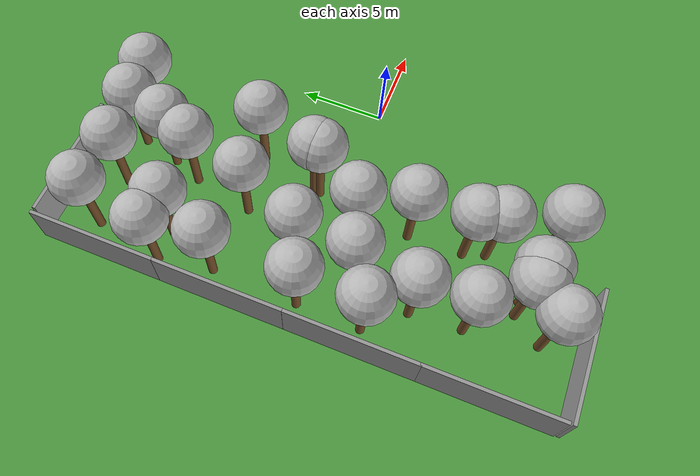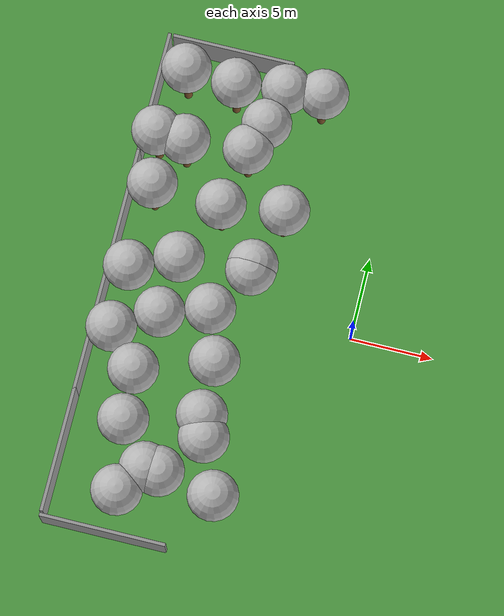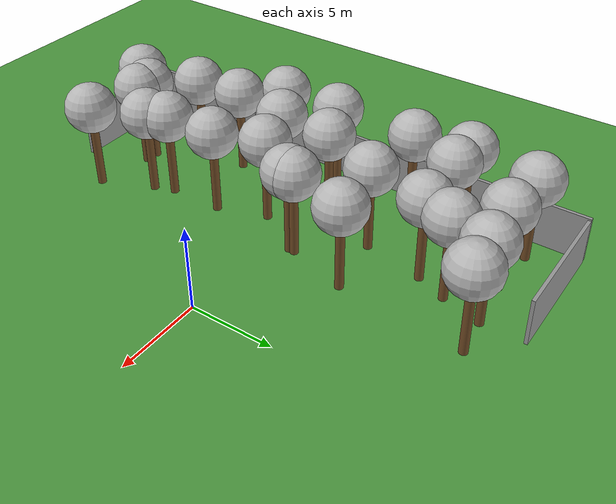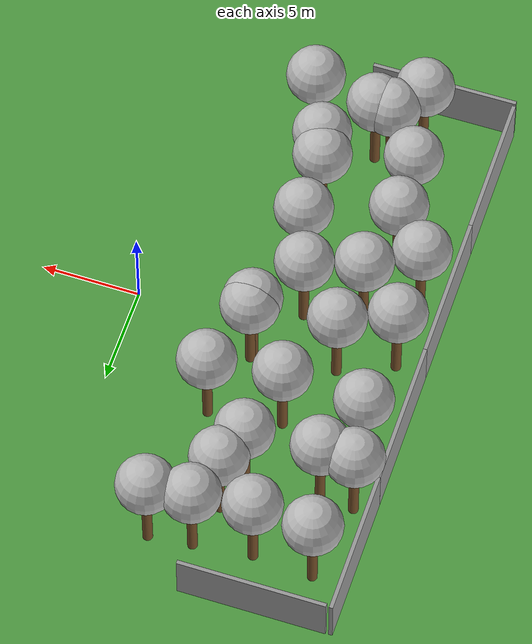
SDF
<sdf version="1.7">
 <world name="default">
  <model name="tree_simple488">
   <static>1</static>
   <link name="link">
    <pose>0 0 0.1 0 -0 0</pose>
    <collision name="collision_trunk">
     <pose>0 0 2 0 -0 0</pose>
     <geometry><cylinder><radius>0.25</radius><length>4</length></cylinder></geometry>
    </collision>
    <collision name="collision_treetop">
     <pose>0 0 5.2 0 -0 0</pose>
     <geometry><sphere><radius>1.5</radius></sphere></geometry>
    </collision>
    <visual name="trunk">
     <pose>0 0 2 0 -0 0</pose>
     <geometry><cylinder><radius>0.25</radius><length>4</length></cylinder></geometry>
     <material>
      <script>
       <uri>model://tree_simple/scripts</uri>
       <uri>model://tree_simple/materials/textures</uri>
       <name>TreeSimple/Trunk</name>
      </script>
     </material>
    </visual>
    <visual name="treetop">
     <pose>0 0 5.2 0 -0 0</pose>
     <geometry><sphere><radius>1.5</radius></sphere></geometry>
     <material>
      <script>
       <uri>model://tree_simple/scripts</uri>
       <uri>model://tree_simple/materials/textures</uri>
       <name>TreeSimple/Treetop</name>
      </script>
     </material>
    </visual>
   </link>
   <pose>-13.1216 12.436 0 0 -0 0</pose>
  </model>
  <model name="tree_simple453">
   <static>1</static>
   <link name="link">
    <pose>0 0 0.1 0 -0 0</pose>
    <collision name="collision_trunk">
     <pose>0 0 2 0 -0 0</pose>
     <geometry><cylinder><radius>0.25</radius><length>4</length></cylinder></geometry>
    </collision>
    <collision name="collision_treetop">
     <pose>0 0 5.2 0 -0 0</pose>
     <geometry><sphere><radius>1.5</radius></sphere></geometry>
    </collision>
    <visual name="trunk">
     <pose>0 0 2 0 -0 0</pose>
     <geometry><cylinder><radius>0.25</radius><length>4</length></cylinder></geometry>
     <material>
      <script>
       <uri>model://tree_simple/scripts</uri>
       <uri>model://tree_simple/materials/textures</uri>
       <name>TreeSimple/Trunk</name>
      </script>
     </material>
    </visual>
    <visual name="treetop">
     <pose>0 0 5.2 0 -0 0</pose>
     <geometry><sphere><radius>1.5</radius></sphere></geometry>
     <material>
      <script>
       <uri>model://tree_simple/scripts</uri>
       <uri>model://tree_simple/materials/textures</uri>
       <name>TreeSimple/Treetop</name>
      </script>
     </material>
    </visual>
   </link>
   <pose>-12.1353 8.19022 0 0 -0 0</pose>
  </model>
  <model name="tree_simple415">
   <static>1</static>
   <link name="link">
    <pose>0 0 0.1 0 -0 0</pose>
    <collision name="collision_trunk">
     <pose>0 0 2 0 -0 0</pose>
     <geometry><cylinder><radius>0.25</radius><length>4</length></cylinder></geometry>
    </collision>
    <collision name="collision_treetop">
     <pose>0 0 5.2 0 -0 0</pose>
     <geometry><sphere><radius>1.5</radius></sphere></geometry>
    </collision>
    <visual name="trunk">
     <pose>0 0 2 0 -0 0</pose>
     <geometry><cylinder><radius>0.25</radius><length>4</length></cylinder></geometry>
     <material>
      <script>
       <uri>model://tree_simple/scripts</uri>
       <uri>model://tree_simple/materials/textures</uri>
       <name>TreeSimple/Trunk</name>
      </script>
     </material>
    </visual>
    <visual name="treetop">
     <pose>0 0 5.2 0 -0 0</pose>
     <geometry><sphere><radius>1.5</radius></sphere></geometry>
     <material>
      <script>
       <uri>model://tree_simple/scripts</uri>
       <uri>model://tree_simple/materials/textures</uri>
       <name>TreeSimple/Treetop</name>
      </script>
     </material>
    </visual>
   </link>
   <pose>-11.6356 -5.82525 0 0 -0 0</pose>
  </model>
  <model name="tree_simple360">
   <static>1</static>
   <link name="link">
    <pose>0 0 0.1 0 -0 0</pose>
    <collision name="collision_trunk">
     <pose>0 0 2 0 -0 0</pose>
     <geometry><cylinder><radius>0.25</radius><length>4</length></cylinder></geometry>
    </collision>
    <collision name="collision_treetop">
     <pose>0 0 5.2 0 -0 0</pose>
     <geometry><sphere><radius>1.5</radius></sphere></geometry>
    </collision>
    <visual name="trunk">
     <pose>0 0 2 0 -0 0</pose>
     <geometry><cylinder><radius>0.25</radius><length>4</length></cylinder></geometry>
     <material>
      <script>
       <uri>model://tree_simple/scripts</uri>
       <uri>model://tree_simple/materials/textures</uri>
       <name>TreeSimple/Trunk</name>
      </script>
     </material>
    </visual>
    <visual name="treetop">
     <pose>0 0 5.2 0 -0 0</pose>
     <geometry><sphere><radius>1.5</radius></sphere></geometry>
     <material>
      <script>
       <uri>model://tree_simple/scripts</uri>
       <uri>model://tree_simple/materials/textures</uri>
       <name>TreeSimple/Treetop</name>
      </script>
     </material>
    </visual>
   </link>
   <pose>-13.8762 8.30703 0 0 -0 0</pose>
  </model>
  <model name="tree_simple322">
   <static>1</static>
   <link name="link">
    <pose>0 0 0.1 0 -0 0</pose>
    <collision name="collision_trunk">
     <pose>0 0 2 0 -0 0</pose>
     <geometry><cylinder><radius>0.25</radius><length>4</length></cylinder></geometry>
    </collision>
    <collision name="collision_treetop">
     <pose>0 0 5.2 0 -0 0</pose>
     <geometry><sphere><radius>1.5</radius></sphere></geometry>
    </collision>
    <visual name="trunk">
     <pose>0 0 2 0 -0 0</pose>
     <geometry><cylinder><radius>0.25</radius><length>4</length></cylinder></geometry>
     <material>
      <script>
       <uri>model://tree_simple/scripts</uri>
       <uri>model://tree_simple/materials/textures</uri>
       <name>TreeSimple/Trunk</name>
      </script>
     </material>
    </visual>
    <visual name="treetop">
     <pose>0 0 5.2 0 -0 0</pose>
     <geometry><sphere><radius>1.5</radius></sphere></geometry>
     <material>
      <script>
       <uri>model://tree_simple/scripts</uri>
       <uri>model://tree_simple/materials/textures</uri>
       <name>TreeSimple/Treetop</name>
      </script>
     </material>
    </visual>
   </link>
   <pose>-10.7837 -12.8599 0 0 -0 0</pose>
  </model>
  <model name="tree_simple303">
   <static>1</static>
   <link name="link">
    <pose>0 0 0.1 0 -0 0</pose>
    <collision name="collision_trunk">
     <pose>0 0 2 0 -0 0</pose>
     <geometry><cylinder><radius>0.25</radius><length>4</length></cylinder></geometry>
    </collision>
    <collision name="collision_treetop">
     <pose>0 0 5.2 0 -0 0</pose>
     <geometry><sphere><radius>1.5</radius></sphere></geometry>
    </collision>
    <visual name="trunk">
     <pose>0 0 2 0 -0 0</pose>
     <geometry><cylinder><radius>0.25</radius><length>4</length></cylinder></geometry>
     <material>
      <script>
       <uri>model://tree_simple/scripts</uri>
       <uri>model://tree_simple/materials/textures</uri>
       <name>TreeSimple/Trunk</name>
      </script>
     </material>
    </visual>
    <visual name="treetop">
     <pose>0 0 5.2 0 -0 0</pose>
     <geometry><sphere><radius>1.5</radius></sphere></geometry>
     <material>
      <script>
       <uri>model://tree_simple/scripts</uri>
       <uri>model://tree_simple/materials/textures</uri>
       <name>TreeSimple/Treetop</name>
      </script>
     </material>
    </visual>
   </link>
   <pose>-9.56095 -11.2139 0 0 -0 0</pose>
  </model>
  <model name="tree_simple253">
   <static>1</static>
   <link name="link">
    <pose>0 0 0.1 0 -0 0</pose>
    <collision name="collision_trunk">
     <pose>0 0 2 0 -0 0</pose>
     <geometry><cylinder><radius>0.25</radius><length>4</length></cylinder></geometry>
    </collision>
    <collision name="collision_treetop">
     <pose>0 0 5.2 0 -0 0</pose>
     <geometry><sphere><radius>1.5</radius></sphere></geometry>
    </collision>
    <visual name="trunk">
     <pose>0 0 2 0 -0 0</pose>
     <geometry><cylinder><radius>0.25</radius><length>4</length></cylinder></geometry>
     <material>
      <script>
       <uri>model://tree_simple/scripts</uri>
       <uri>model://tree_simple/materials/textures</uri>
       <name>TreeSimple/Trunk</name>
      </script>
     </material>
    </visual>
    <visual name="treetop">
     <pose>0 0 5.2 0 -0 0</pose>
     <geometry><sphere><radius>1.5</radius></sphere></geometry>
     <material>
      <script>
       <uri>model://tree_simple/scripts</uri>
       <uri>model://tree_simple/materials/textures</uri>
       <name>TreeSimple/Treetop</name>
      </script>
     </material>
    </visual>
   </link>
   <pose>-6.71888 -8.75374 0 0 -0 0</pose>
  </model>
  <model name="tree_simple234">
   <static>1</static>
   <link name="link">
    <pose>0 0 0.1 0 -0 0</pose>
    <collision name="collision_trunk">
     <pose>0 0 2 0 -0 0</pose>
     <geometry><cylinder><radius>0.25</radius><length>4</length></cylinder></geometry>
    </collision>
    <collision name="collision_treetop">
     <pose>0 0 5.2 0 -0 0</pose>
     <geometry><sphere><radius>1.5</radius></sphere></geometry>
    </collision>
    <visual name="trunk">
     <pose>0 0 2 0 -0 0</pose>
     <geometry><cylinder><radius>0.25</radius><length>4</length></cylinder></geometry>
     <material>
      <script>
       <uri>model://tree_simple/scripts</uri>
       <uri>model://tree_simple/materials/textures</uri>
       <name>TreeSimple/Trunk</name>
      </script>
     </material>
    </visual>
    <visual name="treetop">
     <pose>0 0 5.2 0 -0 0</pose>
     <geometry><sphere><radius>1.5</radius></sphere></geometry>
     <material>
      <script>
       <uri>model://tree_simple/scripts</uri>
       <uri>model://tree_simple/materials/textures</uri>
       <name>TreeSimple/Treetop</name>
      </script>
     </material>
    </visual>
   </link>
   <pose>-7.13672 -7.51189 0 0 -0 0</pose>
  </model>
  <model name="tree_simple187">
   <static>1</static>
   <link name="link">
    <pose>0 0 0.1 0 -0 0</pose>
    <collision name="collision_trunk">
     <pose>0 0 2 0 -0 0</pose>
     <geometry><cylinder><radius>0.25</radius><length>4</length></cylinder></geometry>
    </collision>
    <collision name="collision_treetop">
     <pose>0 0 5.2 0 -0 0</pose>
     <geometry><sphere><radius>1.5</radius></sphere></geometry>
    </collision>
    <visual name="trunk">
     <pose>0 0 2 0 -0 0</pose>
     <geometry><cylinder><radius>0.25</radius><length>4</length></cylinder></geometry>
     <material>
      <script>
       <uri>model://tree_simple/scripts</uri>
       <uri>model://tree_simple/materials/textures</uri>
       <name>TreeSimple/Trunk</name>
      </script>
     </material>
    </visual>
    <visual name="treetop">
     <pose>0 0 5.2 0 -0 0</pose>
     <geometry><sphere><radius>1.5</radius></sphere></geometry>
     <material>
      <script>
       <uri>model://tree_simple/scripts</uri>
       <uri>model://tree_simple/materials/textures</uri>
       <name>TreeSimple/Treetop</name>
      </script>
     </material>
    </visual>
   </link>
   <pose>-6.45554 1.79141 0 0 -0 0</pose>
  </model>
  <model name="tree_simple165">
   <static>1</static>
   <link name="link">
    <pose>0 0 0.1 0 -0 0</pose>
    <collision name="collision_trunk">
     <pose>0 0 2 0 -0 0</pose>
     <geometry><cylinder><radius>0.25</radius><length>4</length></cylinder></geometry>
    </collision>
    <collision name="collision_treetop">
     <pose>0 0 5.2 0 -0 0</pose>
     <geometry><sphere><radius>1.5</radius></sphere></geometry>
    </collision>
    <visual name="trunk">
     <pose>0 0 2 0 -0 0</pose>
     <geometry><cylinder><radius>0.25</radius><length>4</length></cylinder></geometry>
     <material>
      <script>
       <uri>model://tree_simple/scripts</uri>
       <uri>model://tree_simple/materials/textures</uri>
       <name>TreeSimple/Trunk</name>
      </script>
     </material>
    </visual>
    <visual name="treetop">
     <pose>0 0 5.2 0 -0 0</pose>
     <geometry><sphere><radius>1.5</radius></sphere></geometry>
     <material>
      <script>
       <uri>model://tree_simple/scripts</uri>
       <uri>model://tree_simple/materials/textures</uri>
       <name>TreeSimple/Treetop</name>
      </script>
     </material>
    </visual>
   </link>
   <pose>-6.47666 1.43781 0 0 -0 0</pose>
  </model>
  <model name="tree_simple138">
   <static>1</static>
   <link name="link">
    <pose>0 0 0.1 0 -0 0</pose>
    <collision name="collision_trunk">
     <pose>0 0 2 0 -0 0</pose>
     <geometry><cylinder><radius>0.25</radius><length>4</length></cylinder></geometry>
    </collision>
    <collision name="collision_treetop">
     <pose>0 0 5.2 0 -0 0</pose>
     <geometry><sphere><radius>1.5</radius></sphere></geometry>
    </collision>
    <visual name="trunk">
     <pose>0 0 2 0 -0 0</pose>
     <geometry><cylinder><radius>0.25</radius><length>4</length></cylinder></geometry>
     <material>
      <script>
       <uri>model://tree_simple/scripts</uri>
       <uri>model://tree_simple/materials/textures</uri>
       <name>TreeSimple/Trunk</name>
      </script>
     </material>
    </visual>
    <visual name="treetop">
     <pose>0 0 5.2 0 -0 0</pose>
     <geometry><sphere><radius>1.5</radius></sphere></geometry>
     <material>
      <script>
       <uri>model://tree_simple/scripts</uri>
       <uri>model://tree_simple/materials/textures</uri>
       <name>TreeSimple/Treetop</name>
      </script>
     </material>
    </visual>
   </link>
   <pose>-8.74041 -11.2488 0 0 -0 0</pose>
  </model>
  <model name="tree_simple21">
   <static>1</static>
   <link name="link">
    <pose>0 0 0.1 0 -0 0</pose>
    <collision name="collision_trunk">
     <pose>0 0 2 0 -0 0</pose>
     <geometry><cylinder><radius>0.25</radius><length>4</length></cylinder></geometry>
    </collision>
    <collision name="collision_treetop">
     <pose>0 0 5.2 0 -0 0</pose>
     <geometry><sphere><radius>1.5</radius></sphere></geometry>
    </collision>
    <visual name="trunk">
     <pose>0 0 2 0 -0 0</pose>
     <geometry><cylinder><radius>0.25</radius><length>4</length></cylinder></geometry>
     <material>
      <script>
       <uri>model://tree_simple/scripts</uri>
       <uri>model://tree_simple/materials/textures</uri>
       <name>TreeSimple/Trunk</name>
      </script>
     </material>
    </visual>
    <visual name="treetop">
     <pose>0 0 5.2 0 -0 0</pose>
     <geometry><sphere><radius>1.5</radius></sphere></geometry>
     <material>
      <script>
       <uri>model://tree_simple/scripts</uri>
       <uri>model://tree_simple/materials/textures</uri>
       <name>TreeSimple/Treetop</name>
      </script>
     </material>
    </visual>
   </link>
   <pose>-13.3305 5.13608 0 0 -0 0</pose>
  </model>
  <model name="ground_plane">
   <static>1</static>
   <link name="link">
    <collision name="collision">
     <geometry><plane><normal>0 0 1</normal><size>30 30</size></plane></geometry>
     <surface><friction><ode><mu>100</mu><mu2>50</mu2></ode></friction></surface>
    </collision>
    <visual name="grass">
     <cast_shadows>0</cast_shadows>
     <geometry><plane><normal>0 0 1</normal><size>30 30</size></plane></geometry>
     <material>
      <script><uri>file://media/materials/scripts/Gazebo.material</uri><name>Gazebo/Grass</name></script>
     </material>
    </visual>
   </link>
  </model>
  <model name="grey_wall_clone_2_clone_clone_1">
   <static>1</static>
   <link name="link">
    <pose>0 0 1.4 0 -0 0</pose>
    <collision name="collision"><geometry><box><size>7.5 0.2 2.8</size></box></geometry></collision>
    <visual name="visual">
     <cast_shadows>0</cast_shadows>
     <geometry><box><size>7.5 0.2 2.8</size></box></geometry>
     <material>
      <script>
       <uri>model://grey_wall/materials/scripts</uri>
       <uri>model://grey_wall/materials/textures</uri>
       <name>vrc/grey_wall</name>
      </script>
     </material>
    </visual>
   </link>
   <pose>-10.9092 15.0416 0 0 0 -3.1404</pose>
  </model>
  <model name="grey_wall_clone_2_clone_clone_2">
   <static>1</static>
   <link name="link">
    <pose>0 0 1.4 0 -0 0</pose>
    <collision name="collision"><geometry><box><size>7.5 0.2 2.8</size></box></geometry></collision>
    <visual name="visual">
     <cast_shadows>0</cast_shadows>
     <geometry><box><size>7.5 0.2 2.8</size></box></geometry>
     <material>
      <script>
       <uri>model://grey_wall/materials/scripts</uri>
       <uri>model://grey_wall/materials/textures</uri>
       <name>vrc/grey_wall</name>
      </script>
     </material>
    </visual>
   </link>
   <pose>-14.9053 11.3576 0 0 0 -1.57141</pose>
  </model>
  <model name="grey_wall_clone_2_clone_clone_2_clone">
   <static>1</static>
   <link name="link">
    <pose>0 0 1.4 0 -0 0</pose>
    <collision name="collision"><geometry><box><size>7.5 0.2 2.8</size></box></geometry></collision>
    <visual name="visual">
     <cast_shadows>0</cast_shadows>
     <geometry><box><size>7.5 0.2 2.8</size></box></geometry>
     <material>
      <script>
       <uri>model://grey_wall/materials/scripts</uri>
       <uri>model://grey_wall/materials/textures</uri>
       <name>vrc/grey_wall</name>
      </script>
     </material>
    </visual>
   </link>
   <pose>-14.911 3.90089 0 0 0 -1.57141</pose>
  </model>
  <model name="grey_wall_clone_2_clone_clone_2_clone_0">
   <static>1</static>
   <link name="link">
    <pose>0 0 1.4 0 -0 0</pose>
    <collision name="collision"><geometry><box><size>7.5 0.2 2.8</size></box></geometry></collision>
    <visual name="visual">
     <cast_shadows>0</cast_shadows>
     <geometry><box><size>7.5 0.2 2.8</size></box></geometry>
     <material>
      <script>
       <uri>model://grey_wall/materials/scripts</uri>
       <uri>model://grey_wall/materials/textures</uri>
       <name>vrc/grey_wall</name>
      </script>
     </material>
    </visual>
   </link>
   <pose>-14.9143 -3.60412 0 0 0 -1.57141</pose>
  </model>
  <model name="grey_wall_clone_2_clone_clone_2_clone_1">
   <static>1</static>
   <link name="link">
    <pose>0 0 1.4 0 -0 0</pose>
    <collision name="collision"><geometry><box><size>7.5 0.2 2.8</size></box></geometry></collision>
    <visual name="visual">
     <cast_shadows>0</cast_shadows>
     <geometry><box><size>7.5 0.2 2.8</size></box></geometry>
     <material>
      <script>
       <uri>model://grey_wall/materials/scripts</uri>
       <uri>model://grey_wall/materials/textures</uri>
       <name>vrc/grey_wall</name>
      </script>
     </material>
    </visual>
   </link>
   <pose>-14.9171 -11.0083 0 0 0 -1.57141</pose>
  </model>
  <model name="grey_wall_clone_2_clone_clone_2_clone_2">
   <static>1</static>
   <link name="link">
    <pose>0 0 1.4 0 -0 0</pose>
    <collision name="collision"><geometry><box><size>7.5 0.2 2.8</size></box></geometry></collision>
    <visual name="visual">
     <cast_shadows>0</cast_shadows>
     <geometry><box><size>7.5 0.2 2.8</size></box></geometry>
     <material>
      <script>
       <uri>model://grey_wall/materials/scripts</uri>
       <uri>model://grey_wall/materials/textures</uri>
       <name>vrc/grey_wall</name>
      </script>
     </material>
    </visual>
   </link>
   <pose>-11.2225 -14.9533 0 0 -0 0.003227</pose>
  </model>
  <model name="tree_simple432_clone_5">
   <static>1</static>
   <link name="link">
    <pose>0 0 0.1 0 -0 0</pose>
    <collision name="collision_trunk">
     <pose>0 0 2 0 -0 0</pose>
     <geometry><cylinder><radius>0.25</radius><length>4</length></cylinder></geometry>
    </collision>
    <collision name="collision_treetop">
     <pose>0 0 5.2 0 -0 0</pose>
     <geometry><sphere><radius>1.5</radius></sphere></geometry>
    </collision>
    <visual name="trunk">
     <pose>0 0 2 0 -0 0</pose>
     <geometry><cylinder><radius>0.25</radius><length>4</length></cylinder></geometry>
     <material>
      <script>
       <uri>model://tree_simple/scripts</uri>
       <uri>model://tree_simple/materials/textures</uri>
       <name>TreeSimple/Trunk</name>
      </script>
     </material>
    </visual>
    <visual name="treetop">
     <pose>0 0 5.2 0 -0 0</pose>
     <geometry><sphere><radius>1.5</radius></sphere></geometry>
     <material>
      <script>
       <uri>model://tree_simple/scripts</uri>
       <uri>model://tree_simple/materials/textures</uri>
       <name>TreeSimple/Treetop</name>
      </script>
     </material>
    </visual>
   </link>
   <pose>-7.21885 -4.27567 0 0 -0 0</pose>
  </model>
  <model name="tree_simple432_clone_6">
   <static>1</static>
   <link name="link">
    <pose>0 0 0.1 0 -0 0</pose>
    <collision name="collision_trunk">
     <pose>0 0 2 0 -0 0</pose>
     <geometry><cylinder><radius>0.25</radius><length>4</length></cylinder></geometry>
    </collision>
    <collision name="collision_treetop">
     <pose>0 0 5.2 0 -0 0</pose>
     <geometry><sphere><radius>1.5</radius></sphere></geometry>
    </collision>
    <visual name="trunk">
     <pose>0 0 2 0 -0 0</pose>
     <geometry><cylinder><radius>0.25</radius><length>4</length></cylinder></geometry>
     <material>
      <script>
       <uri>model://tree_simple/scripts</uri>
       <uri>model://tree_simple/materials/textures</uri>
       <name>TreeSimple/Trunk</name>
      </script>
     </material>
    </visual>
    <visual name="treetop">
     <pose>0 0 5.2 0 -0 0</pose>
     <geometry><sphere><radius>1.5</radius></sphere></geometry>
     <material>
      <script>
       <uri>model://tree_simple/scripts</uri>
       <uri>model://tree_simple/materials/textures</uri>
       <name>TreeSimple/Treetop</name>
      </script>
     </material>
    </visual>
   </link>
   <pose>-11.0039 -2.23208 0 0 -0 0</pose>
  </model>
  <model name="tree_simple432_clone_7">
   <static>1</static>
   <link name="link">
    <pose>0 0 0.1 0 -0 0</pose>
    <collision name="collision_trunk">
     <pose>0 0 2 0 -0 0</pose>
     <geometry><cylinder><radius>0.25</radius><length>4</length></cylinder></geometry>
    </collision>
    <collision name="collision_treetop">
     <pose>0 0 5.2 0 -0 0</pose>
     <geometry><sphere><radius>1.5</radius></sphere></geometry>
    </collision>
    <visual name="trunk">
     <pose>0 0 2 0 -0 0</pose>
     <geometry><cylinder><radius>0.25</radius><length>4</length></cylinder></geometry>
     <material>
      <script>
       <uri>model://tree_simple/scripts</uri>
       <uri>model://tree_simple/materials/textures</uri>
       <name>TreeSimple/Trunk</name>
      </script>
     </material>
    </visual>
    <visual name="treetop">
     <pose>0 0 5.2 0 -0 0</pose>
     <geometry><sphere><radius>1.5</radius></sphere></geometry>
     <material>
      <script>
       <uri>model://tree_simple/scripts</uri>
       <uri>model://tree_simple/materials/textures</uri>
       <name>TreeSimple/Treetop</name>
      </script>
     </material>
    </visual>
   </link>
   <pose>-10.7207 1.20686 0 0 -0 0</pose>
  </model>
  <model name="tree_simple432_clone_8">
   <static>1</static>
   <link name="link">
    <pose>0 0 0.1 0 -0 0</pose>
    <collision name="collision_trunk">
     <pose>0 0 2 0 -0 0</pose>
     <geometry><cylinder><radius>0.25</radius><length>4</length></cylinder></geometry>
    </collision>
    <collision name="collision_treetop">
     <pose>0 0 5.2 0 -0 0</pose>
     <geometry><sphere><radius>1.5</radius></sphere></geometry>
    </collision>
    <visual name="trunk">
     <pose>0 0 2 0 -0 0</pose>
     <geometry><cylinder><radius>0.25</radius><length>4</length></cylinder></geometry>
     <material>
      <script>
       <uri>model://tree_simple/scripts</uri>
       <uri>model://tree_simple/materials/textures</uri>
       <name>TreeSimple/Trunk</name>
      </script>
     </material>
    </visual>
    <visual name="treetop">
     <pose>0 0 5.2 0 -0 0</pose>
     <geometry><sphere><radius>1.5</radius></sphere></geometry>
     <material>
      <script>
       <uri>model://tree_simple/scripts</uri>
       <uri>model://tree_simple/materials/textures</uri>
       <name>TreeSimple/Treetop</name>
      </script>
     </material>
    </visual>
   </link>
   <pose>-9.12828 4.86893 0 0 -0 0</pose>
  </model>
  <model name="tree_simple432_clone_9">
   <static>1</static>
   <link name="link">
    <pose>0 0 0.1 0 -0 0</pose>
    <collision name="collision_trunk">
     <pose>0 0 2 0 -0 0</pose>
     <geometry><cylinder><radius>0.25</radius><length>4</length></cylinder></geometry>
    </collision>
    <collision name="collision_treetop">
     <pose>0 0 5.2 0 -0 0</pose>
     <geometry><sphere><radius>1.5</radius></sphere></geometry>
    </collision>
    <visual name="trunk">
     <pose>0 0 2 0 -0 0</pose>
     <geometry><cylinder><radius>0.25</radius><length>4</length></cylinder></geometry>
     <material>
      <script>
       <uri>model://tree_simple/scripts</uri>
       <uri>model://tree_simple/materials/textures</uri>
       <name>TreeSimple/Trunk</name>
      </script>
     </material>
    </visual>
    <visual name="treetop">
     <pose>0 0 5.2 0 -0 0</pose>
     <geometry><sphere><radius>1.5</radius></sphere></geometry>
     <material>
      <script>
       <uri>model://tree_simple/scripts</uri>
       <uri>model://tree_simple/materials/textures</uri>
       <name>TreeSimple/Treetop</name>
      </script>
     </material>
    </visual>
   </link>
   <pose>-5.43772 5.38033 0 0 -0 0</pose>
  </model>
  <model name="tree_simple432_clone_13">
   <static>1</static>
   <link name="link">
    <pose>0 0 0.1 0 -0 0</pose>
    <collision name="collision_trunk">
     <pose>0 0 2 0 -0 0</pose>
     <geometry><cylinder><radius>0.25</radius><length>4</length></cylinder></geometry>
    </collision>
    <collision name="collision_treetop">
     <pose>0 0 5.2 0 -0 0</pose>
     <geometry><sphere><radius>1.5</radius></sphere></geometry>
    </collision>
    <visual name="trunk">
     <pose>0 0 2 0 -0 0</pose>
     <geometry><cylinder><radius>0.25</radius><length>4</length></cylinder></geometry>
     <material>
      <script>
       <uri>model://tree_simple/scripts</uri>
       <uri>model://tree_simple/materials/textures</uri>
       <name>TreeSimple/Trunk</name>
      </script>
     </material>
    </visual>
    <visual name="treetop">
     <pose>0 0 5.2 0 -0 0</pose>
     <geometry><sphere><radius>1.5</radius></sphere></geometry>
     <material>
      <script>
       <uri>model://tree_simple/scripts</uri>
       <uri>model://tree_simple/materials/textures</uri>
       <name>TreeSimple/Treetop</name>
      </script>
     </material>
    </visual>
   </link>
   <pose>-8.39636 8.48128 0 0 -0 0</pose>
  </model>
  <model name="tree_simple432_clone_17">
   <static>1</static>
   <link name="link">
    <pose>0 0 0.1 0 -0 0</pose>
    <collision name="collision_trunk">
     <pose>0 0 2 0 -0 0</pose>
     <geometry><cylinder><radius>0.25</radius><length>4</length></cylinder></geometry>
    </collision>
    <collision name="collision_treetop">
     <pose>0 0 5.2 0 -0 0</pose>
     <geometry><sphere><radius>1.5</radius></sphere></geometry>
    </collision>
    <visual name="trunk">
     <pose>0 0 2 0 -0 0</pose>
     <geometry><cylinder><radius>0.25</radius><length>4</length></cylinder></geometry>
     <material>
      <script>
       <uri>model://tree_simple/scripts</uri>
       <uri>model://tree_simple/materials/textures</uri>
       <name>TreeSimple/Trunk</name>
      </script>
     </material>
    </visual>
    <visual name="treetop">
     <pose>0 0 5.2 0 -0 0</pose>
     <geometry><sphere><radius>1.5</radius></sphere></geometry>
     <material>
      <script>
       <uri>model://tree_simple/scripts</uri>
       <uri>model://tree_simple/materials/textures</uri>
       <name>TreeSimple/Treetop</name>
      </script>
     </material>
    </visual>
   </link>
   <pose>-4.88354 12.8198 0 0 -0 0</pose>
  </model>
  <model name="tree_simple432_clone_18">
   <static>1</static>
   <link name="link">
    <pose>0 0 0.1 0 -0 0</pose>
    <collision name="collision_trunk">
     <pose>0 0 2 0 -0 0</pose>
     <geometry><cylinder><radius>0.25</radius><length>4</length></cylinder></geometry>
    </collision>
    <collision name="collision_treetop">
     <pose>0 0 5.2 0 -0 0</pose>
     <geometry><sphere><radius>1.5</radius></sphere></geometry>
    </collision>
    <visual name="trunk">
     <pose>0 0 2 0 -0 0</pose>
     <geometry><cylinder><radius>0.25</radius><length>4</length></cylinder></geometry>
     <material>
      <script>
       <uri>model://tree_simple/scripts</uri>
       <uri>model://tree_simple/materials/textures</uri>
       <name>TreeSimple/Trunk</name>
      </script>
     </material>
    </visual>
    <visual name="treetop">
     <pose>0 0 5.2 0 -0 0</pose>
     <geometry><sphere><radius>1.5</radius></sphere></geometry>
     <material>
      <script>
       <uri>model://tree_simple/scripts</uri>
       <uri>model://tree_simple/materials/textures</uri>
       <name>TreeSimple/Treetop</name>
      </script>
     </material>
    </visual>
   </link>
   <pose>-7.7127 10.2583 0 0 -0 0</pose>
  </model>
  <model name="tree_simple432_clone_19">
   <static>1</static>
   <link name="link">
    <pose>0 0 0.1 0 -0 0</pose>
    <collision name="collision_trunk">
     <pose>0 0 2 0 -0 0</pose>
     <geometry><cylinder><radius>0.25</radius><length>4</length></cylinder></geometry>
    </collision>
    <collision name="collision_treetop">
     <pose>0 0 5.2 0 -0 0</pose>
     <geometry><sphere><radius>1.5</radius></sphere></geometry>
    </collision>
    <visual name="trunk">
     <pose>0 0 2 0 -0 0</pose>
     <geometry><cylinder><radius>0.25</radius><length>4</length></cylinder></geometry>
     <material>
      <script>
       <uri>model://tree_simple/scripts</uri>
       <uri>model://tree_simple/materials/textures</uri>
       <name>TreeSimple/Trunk</name>
      </script>
     </material>
    </visual>
    <visual name="treetop">
     <pose>0 0 5.2 0 -0 0</pose>
     <geometry><sphere><radius>1.5</radius></sphere></geometry>
     <material>
      <script>
       <uri>model://tree_simple/scripts</uri>
       <uri>model://tree_simple/materials/textures</uri>
       <name>TreeSimple/Treetop</name>
      </script>
     </material>
    </visual>
   </link>
   <pose>-7.09197 12.5944 0 0 -0 0</pose>
  </model>
  <model name="tree_simple432_clone_20">
   <static>1</static>
   <link name="link">
    <pose>0 0 0.1 0 -0 0</pose>
    <collision name="collision_trunk">
     <pose>0 0 2 0 -0 0</pose>
     <geometry><cylinder><radius>0.25</radius><length>4</length></cylinder></geometry>
    </collision>
    <collision name="collision_treetop">
     <pose>0 0 5.2 0 -0 0</pose>
     <geometry><sphere><radius>1.5</radius></sphere></geometry>
    </collision>
    <visual name="trunk">
     <pose>0 0 2 0 -0 0</pose>
     <geometry><cylinder><radius>0.25</radius><length>4</length></cylinder></geometry>
     <material>
      <script>
       <uri>model://tree_simple/scripts</uri>
       <uri>model://tree_simple/materials/textures</uri>
       <name>TreeSimple/Trunk</name>
      </script>
     </material>
    </visual>
    <visual name="treetop">
     <pose>0 0 5.2 0 -0 0</pose>
     <geometry><sphere><radius>1.5</radius></sphere></geometry>
     <material>
      <script>
       <uri>model://tree_simple/scripts</uri>
       <uri>model://tree_simple/materials/textures</uri>
       <name>TreeSimple/Treetop</name>
      </script>
     </material>
    </visual>
   </link>
   <pose>-10.0545 12.2558 0 0 -0 0</pose>
  </model>
  <model name="tree_simple432_clone_21">
   <static>1</static>
   <link name="link">
    <pose>0 0 0.1 0 -0 0</pose>
    <collision name="collision_trunk">
     <pose>0 0 2 0 -0 0</pose>
     <geometry><cylinder><radius>0.25</radius><length>4</length></cylinder></geometry>
    </collision>
    <collision name="collision_treetop">
     <pose>0 0 5.2 0 -0 0</pose>
     <geometry><sphere><radius>1.5</radius></sphere></geometry>
    </collision>
    <visual name="trunk">
     <pose>0 0 2 0 -0 0</pose>
     <geometry><cylinder><radius>0.25</radius><length>4</length></cylinder></geometry>
     <material>
      <script>
       <uri>model://tree_simple/scripts</uri>
       <uri>model://tree_simple/materials/textures</uri>
       <name>TreeSimple/Trunk</name>
      </script>
     </material>
    </visual>
    <visual name="treetop">
     <pose>0 0 5.2 0 -0 0</pose>
     <geometry><sphere><radius>1.5</radius></sphere></geometry>
     <material>
      <script>
       <uri>model://tree_simple/scripts</uri>
       <uri>model://tree_simple/materials/textures</uri>
       <name>TreeSimple/Treetop</name>
      </script>
     </material>
    </visual>
   </link>
   <pose>-5.38856 -11.8673 0 0 -0 0</pose>
  </model>
  <model name="tree_simple432_clone_24">
   <static>1</static>
   <link name="link">
    <pose>0 0 0.1 0 -0 0</pose>
    <collision name="collision_trunk">
     <pose>0 0 2 0 -0 0</pose>
     <geometry><cylinder><radius>0.25</radius><length>4</length></cylinder></geometry>
    </collision>
    <collision name="collision_treetop">
     <pose>0 0 5.2 0 -0 0</pose>
     <geometry><sphere><radius>1.5</radius></sphere></geometry>
    </collision>
    <visual name="trunk">
     <pose>0 0 2 0 -0 0</pose>
     <geometry><cylinder><radius>0.25</radius><length>4</length></cylinder></geometry>
     <material>
      <script>
       <uri>model://tree_simple/scripts</uri>
       <uri>model://tree_simple/materials/textures</uri>
       <name>TreeSimple/Trunk</name>
      </script>
     </material>
    </visual>
    <visual name="treetop">
     <pose>0 0 5.2 0 -0 0</pose>
     <geometry><sphere><radius>1.5</radius></sphere></geometry>
     <material>
      <script>
       <uri>model://tree_simple/scripts</uri>
       <uri>model://tree_simple/materials/textures</uri>
       <name>TreeSimple/Treetop</name>
      </script>
     </material>
    </visual>
   </link>
   <pose>-11.4501 -8.82247 0 0 -0 0</pose>
  </model>
  <model name="tree_simple432_clone_25">
   <static>1</static>
   <link name="link">
    <pose>0 0 0.1 0 -0 0</pose>
    <collision name="collision_trunk">
     <pose>0 0 2 0 -0 0</pose>
     <geometry><cylinder><radius>0.25</radius><length>4</length></cylinder></geometry>
    </collision>
    <collision name="collision_treetop">
     <pose>0 0 5.2 0 -0 0</pose>
     <geometry><sphere><radius>1.5</radius></sphere></geometry>
    </collision>
    <visual name="trunk">
     <pose>0 0 2 0 -0 0</pose>
     <geometry><cylinder><radius>0.25</radius><length>4</length></cylinder></geometry>
     <material>
      <script>
       <uri>model://tree_simple/scripts</uri>
       <uri>model://tree_simple/materials/textures</uri>
       <name>TreeSimple/Trunk</name>
      </script>
     </material>
    </visual>
    <visual name="treetop">
     <pose>0 0 5.2 0 -0 0</pose>
     <geometry><sphere><radius>1.5</radius></sphere></geometry>
     <material>
      <script>
       <uri>model://tree_simple/scripts</uri>
       <uri>model://tree_simple/materials/textures</uri>
       <name>TreeSimple/Treetop</name>
      </script>
     </material>
    </visual>
   </link>
   <pose>-8.20154 -1.33567 0 0 -0 0</pose>
  </model>
  <model name="tree_simple432_clone_28">
   <static>1</static>
   <link name="link">
    <pose>0 0 0.1 0 -0 0</pose>
    <collision name="collision_trunk">
     <pose>0 0 2 0 -0 0</pose>
     <geometry><cylinder><radius>0.25</radius><length>4</length></cylinder></geometry>
    </collision>
    <collision name="collision_treetop">
     <pose>0 0 5.2 0 -0 0</pose>
     <geometry><sphere><radius>1.5</radius></sphere></geometry>
    </collision>
    <visual name="trunk">
     <pose>0 0 2 0 -0 0</pose>
     <geometry><cylinder><radius>0.25</radius><length>4</length></cylinder></geometry>
     <material>
      <script>
       <uri>model://tree_simple/scripts</uri>
       <uri>model://tree_simple/materials/textures</uri>
       <name>TreeSimple/Trunk</name>
      </script>
     </material>
    </visual>
    <visual name="treetop">
     <pose>0 0 5.2 0 -0 0</pose>
     <geometry><sphere><radius>1.5</radius></sphere></geometry>
     <material>
      <script>
       <uri>model://tree_simple/scripts</uri>
       <uri>model://tree_simple/materials/textures</uri>
       <name>TreeSimple/Treetop</name>
      </script>
     </material>
    </visual>
   </link>
   <pose>-13.4305 0.034373 0 0 -0 0</pose>
  </model>
  <model name="tree_simple432_clone_29">
   <static>1</static>
   <link name="link">
    <pose>0 0 0.1 0 -0 0</pose>
    <collision name="collision_trunk">
     <pose>0 0 2 0 -0 0</pose>
     <geometry><cylinder><radius>0.25</radius><length>4</length></cylinder></geometry>
    </collision>
    <collision name="collision_treetop">
     <pose>0 0 5.2 0 -0 0</pose>
     <geometry><sphere><radius>1.5</radius></sphere></geometry>
    </collision>
    <visual name="trunk">
     <pose>0 0 2 0 -0 0</pose>
     <geometry><cylinder><radius>0.25</radius><length>4</length></cylinder></geometry>
     <material>
      <script>
       <uri>model://tree_simple/scripts</uri>
       <uri>model://tree_simple/materials/textures</uri>
       <name>TreeSimple/Trunk</name>
      </script>
     </material>
    </visual>
    <visual name="treetop">
     <pose>0 0 5.2 0 -0 0</pose>
     <geometry><sphere><radius>1.5</radius></sphere></geometry>
     <material>
      <script>
       <uri>model://tree_simple/scripts</uri>
       <uri>model://tree_simple/materials/textures</uri>
       <name>TreeSimple/Treetop</name>
      </script>
     </material>
    </visual>
   </link>
   <pose>-13.4869 -3.71952 0 0 -0 0</pose>
  </model>
 </world>
</sdf>
